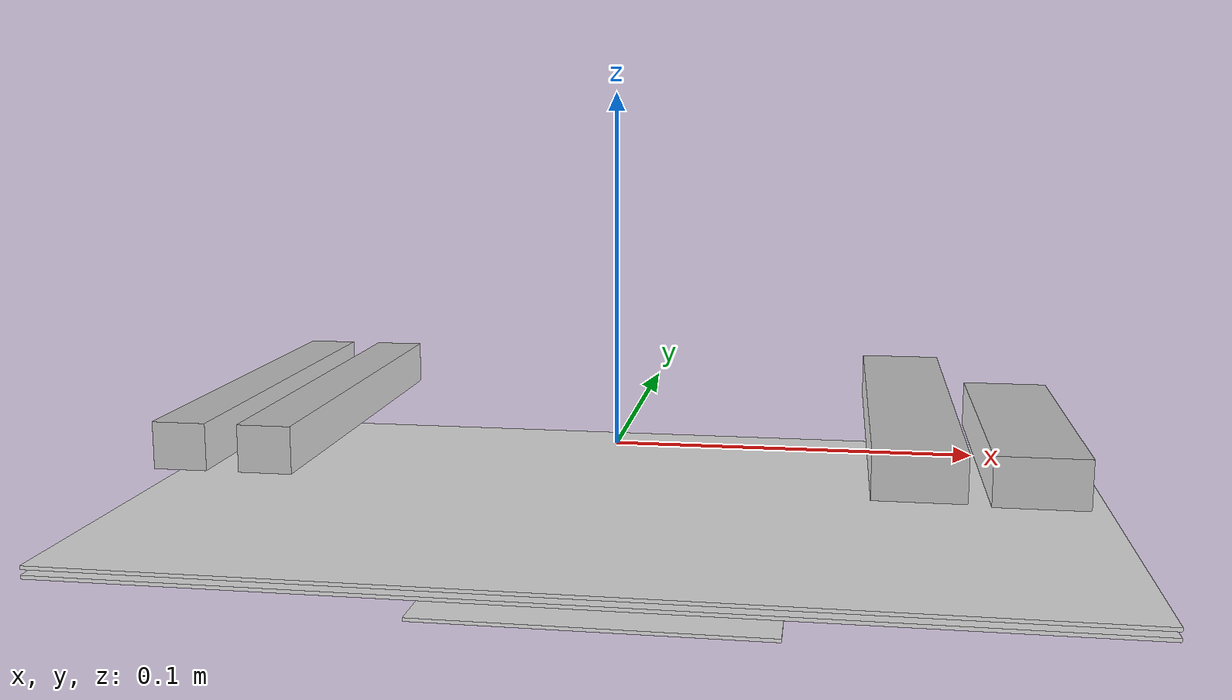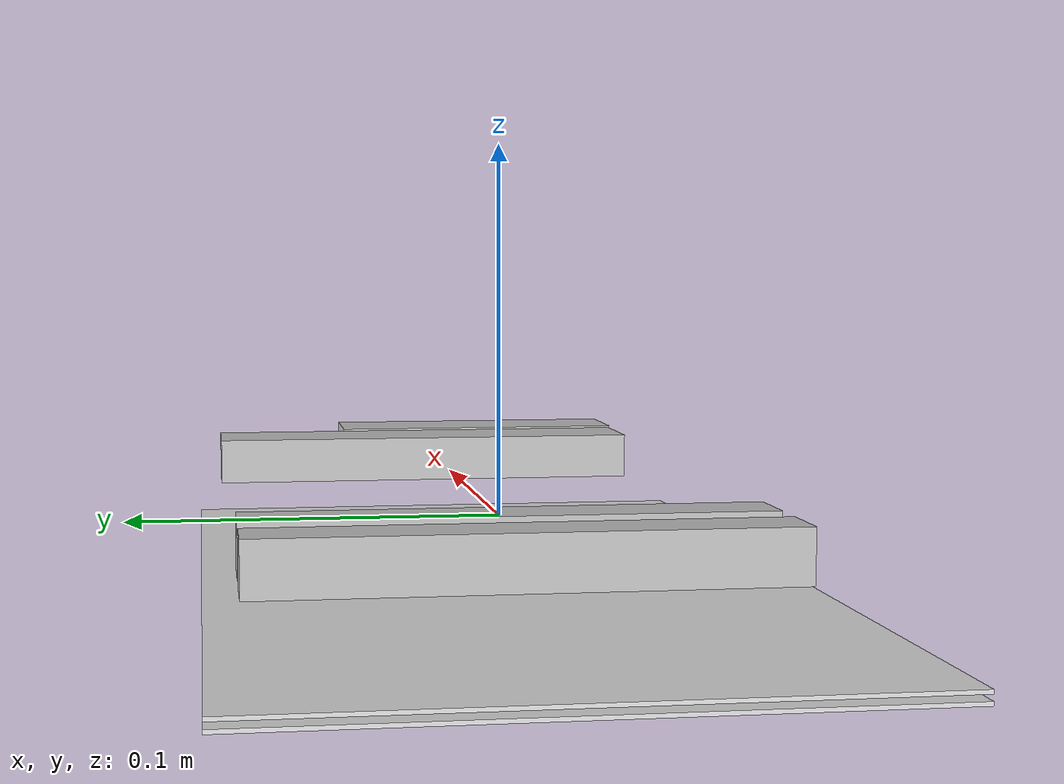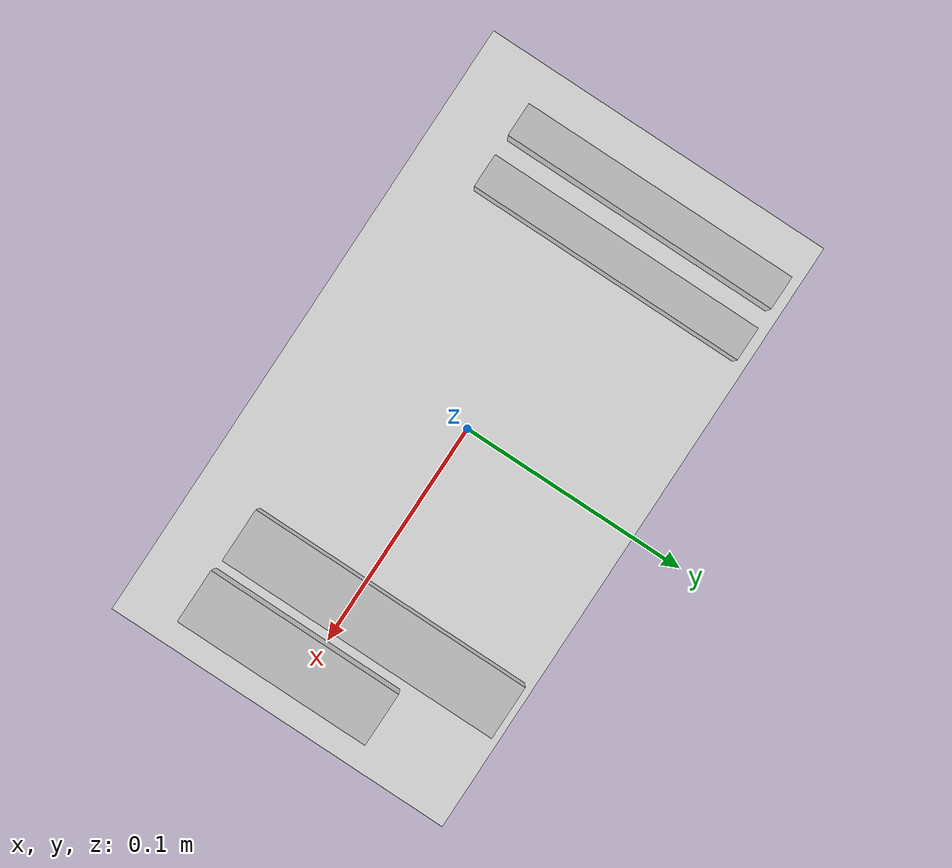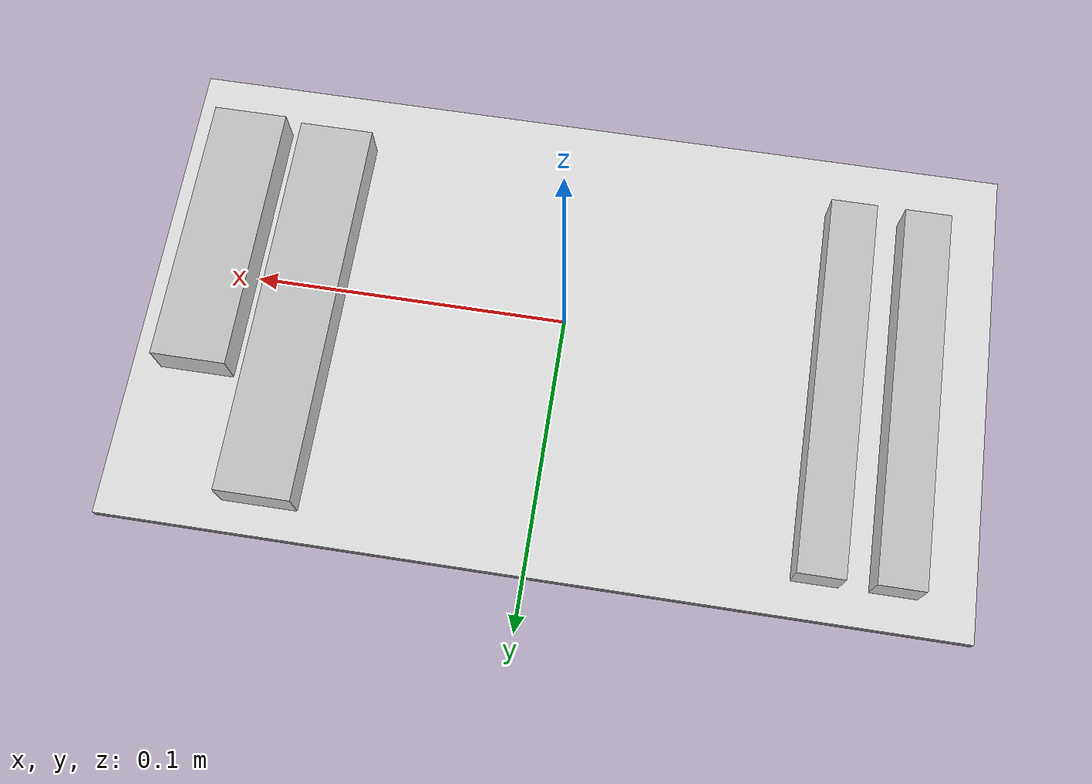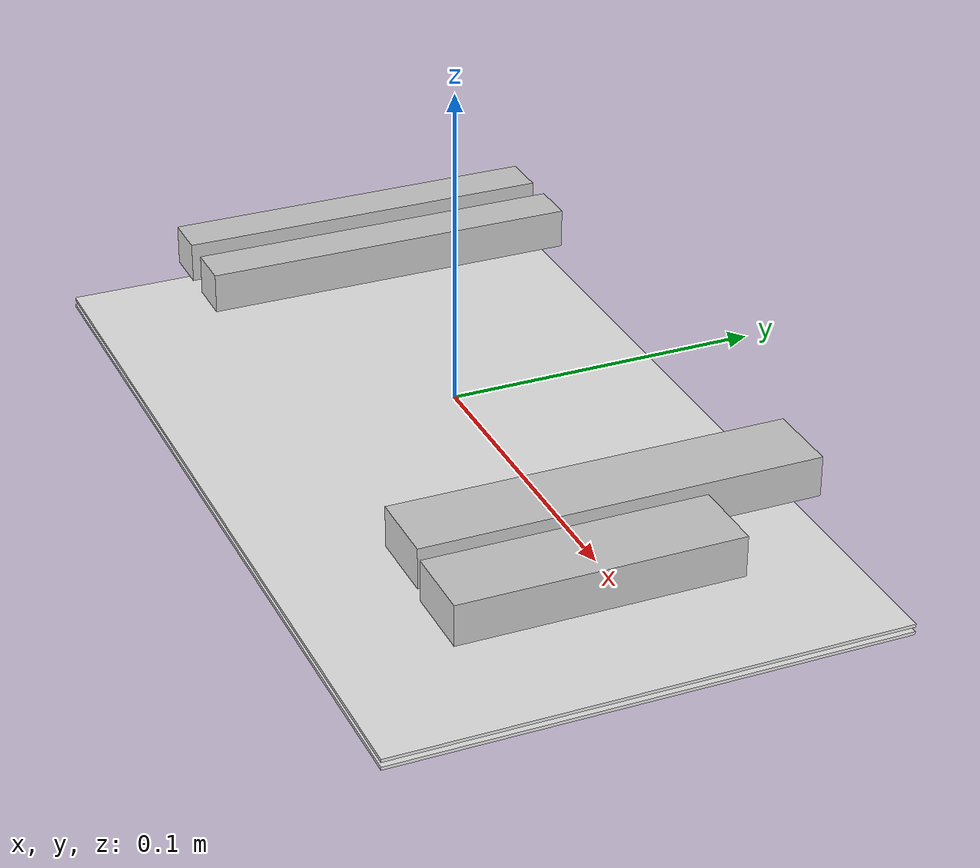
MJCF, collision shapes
<mujoco model="dining_set_utensils">
  <asset>
  <texture file="metal.png" name="tex-dining_set_utensils" type="2d" />
  <material name="dining_set_utensils" reflectance="0.5" shininess="1.0" specular="0.4" texrepeat="1 1" texture="tex-dining_set_utensils" texuniform="false" />
  <mesh file="visual/dining_set_utensils_vis.msh" name="dining_set_utensils_vis" scale="0.02 0.02 0.02" />
 <texture file="white_linen_texture.png" name="tex-dining_set_cloth" type="2d" />
 <material name="dining_set_cloth" reflectance="0.0" texrepeat="1 1" texture="tex-dining_set_cloth" texuniform="false" />
  </asset>
  <worldbody>
    <body>
      <body name="object" pos="0 0 0.0">
      <geom solimp="0.998 0.998 0.001" solref="0.001 1" density="100" friction="0.95 0.3 0.1" type="mesh" mesh="dining_set_utensils_vis" conaffinity="0" contype="0" group="1" material="dining_set_utensils" />
      <site type="box" pos="0 0 -0.0375" quat="1 0 0 0" size="0.05 0.05 0.0005" material="dining_set_cloth" name="center_region"/>
      <geom solimp="0.998 0.998 0.001" solref="0.001 1" density="100" friction="0.95 0.3 0.1" type="box" pos="-0.08680 0.01138 0.00730" quat="0.50000 -0.50000 0.50000 0.50000" size="0.00644 0.00735 0.06091" group="0" rgba="0.8 0.8 0.8 0.3"/>
      <geom solimp="0.998 0.998 0.001" solref="0.001 1" density="100" friction="0.95 0.3 0.1" type="box" pos="0.08302 0.01125 0.00730" quat="0.50000 -0.50000 0.50000 0.50000" size="0.00644 0.01183 0.06238" group="0" rgba="0.8 0.8 0.8 0.3"/>
      <geom solimp="0.998 0.998 0.001" solref="0.001 1" density="100" friction="0.95 0.3 0.1" type="box" pos="0.11215 -0.00918 0.00730" quat="0.50000 -0.50000 0.50000 0.50000" size="0.00644 0.01183 0.04346" group="0" rgba="0.8 0.8 0.8 0.3"/>
      <geom solimp="0.998 0.998 0.001" solref="0.001 1" density="100" friction="0.95 0.3 0.1" type="box" pos="-0.11046 0.01138 0.00730" quat="0.50000 -0.50000 0.50000 0.50000" size="0.00644 0.00735 0.06091" group="0" rgba="0.8 0.8 0.8 0.3"/>
      <geom solimp="0.998 0.998 0.001" solref="0.001 1" density="100" friction="0.95 0.3 0.1" type="box" pos="0 0 -0.0175" quat="1 0 0 0" size="0.14 0.08 0.0005" group="1" conaffinity="0" contype="0"  material="dining_set_cloth"/>
      <geom solimp="0.001 0.001 0.001" solref="0.001 1" density="100" friction="0.001 0.001 0.001" type="box" pos="0 0 -0.02" quat="1 0 0 0" size="0.14 0.08 0.0005" group="0" material="dining_set_cloth"/>
      </body>
      <site rgba="0 0 0 0" size="0.005" pos="0 0 -0.06" name="bottom_site" />
      <site rgba="0 0 0 0" size="0.005" pos="0 0 0.04" name="top_site" />
      <site rgba="0 0 0 0" size="0.005" pos="0.025 0.025 0" name="horizontal_radius_site" />
    </body>
  </worldbody>
</mujoco>
